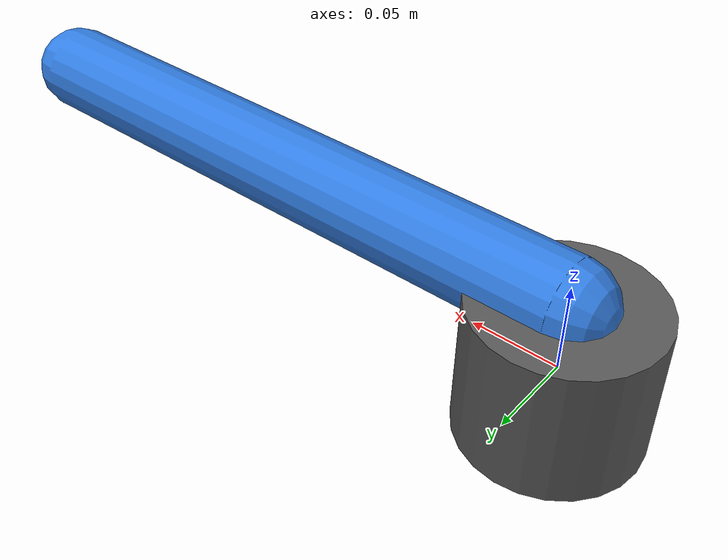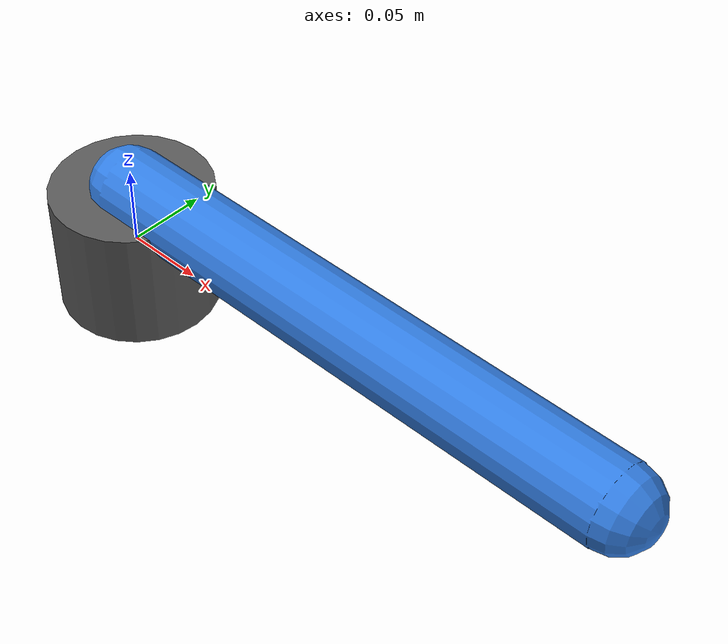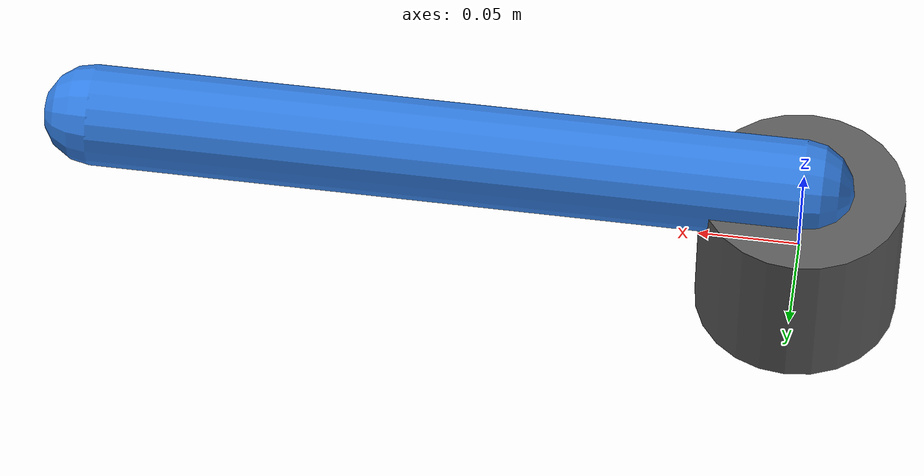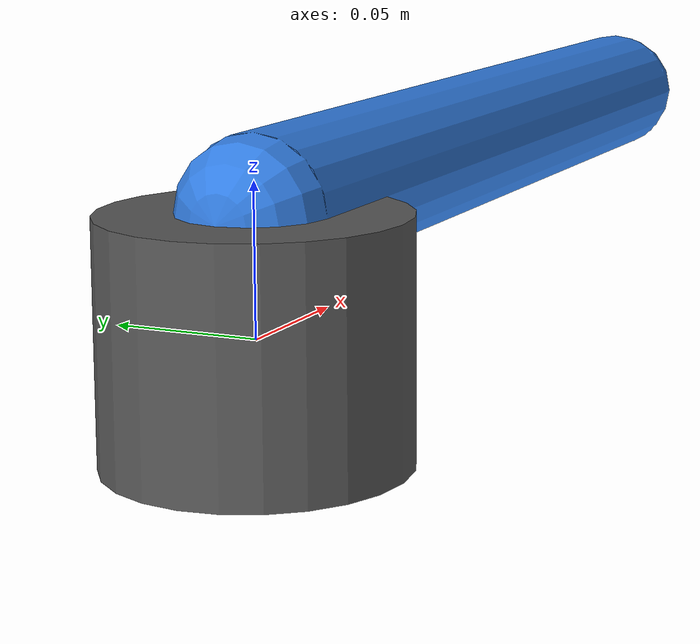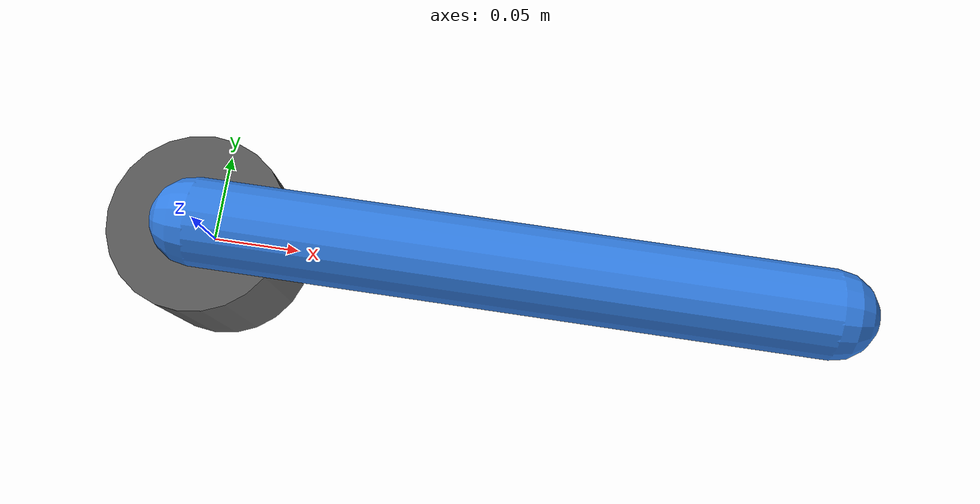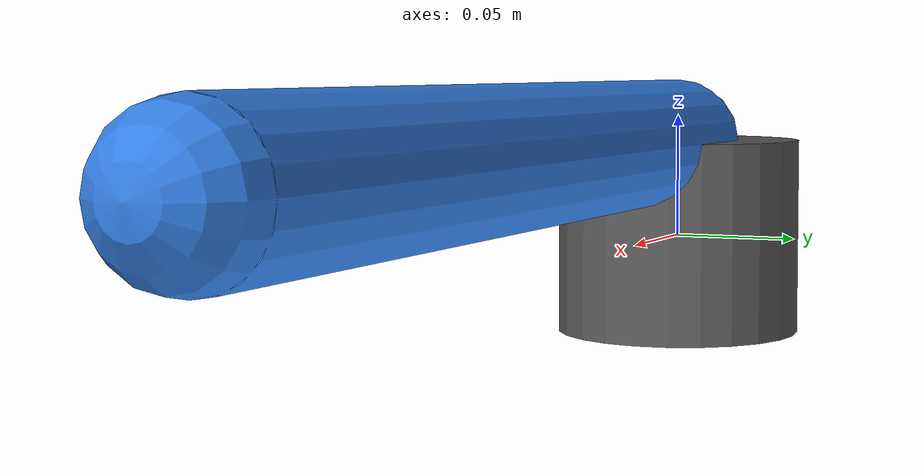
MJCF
<mujoco model="robotcan_joint">
  <compiler angle="degree" autolimits="true"/>

  <option timestep="0.002" gravity="0 0 0" integrator="RK4"/>

  <default>
    <joint type="hinge" axis="0 0 1" limited="true" range="-180 180" damping="0.8" armature="0.01"/>
    <geom type="capsule" size="0.025 0.18" density="1200" friction="0.8 0.1 0.1" rgba="0.2 0.5 0.9 1"/>
    <motor ctrllimited="true" ctrlrange="-50 50"/>
  </default>

  <visual>
    <headlight ambient="0.35 0.35 0.35" diffuse="0.65 0.65 0.65" specular="0.2 0.2 0.2"/>
    <rgba haze="0.15 0.2 0.25 1"/>
  </visual>

  <worldbody>
    <light pos="0 0 1.5" dir="0 0 -1"/>

    <body name="base" pos="0 0 0">
      <geom name="base_geom" type="cylinder" size="0.05 0.04" rgba="0.35 0.35 0.35 1"/>

      <body name="link1" pos="0 0 0.04">
        <joint name="joint1"/>
        <geom name="link1_geom" fromto="0 0 0 0.35 0 0"/>
        <site name="joint_center" pos="0 0 0" size="0.01" rgba="1 0 0 1"/>
        <site name="tip" pos="0.35 0 0" size="0.012" rgba="0 1 0 1"/>
      </body>
    </body>
  </worldbody>

  <actuator>
    <motor name="joint1_motor" joint="joint1" gear="1"/>
  </actuator>

  <sensor>
    <jointpos name="joint1_pos" joint="joint1"/>
    <jointvel name="joint1_vel" joint="joint1"/>
    <actuatorfrc name="joint1_torque" actuator="joint1_motor"/>
  </sensor>

  <keyframe>
    <key name="home" qpos="0" ctrl="0"/>
  </keyframe>
</mujoco>
